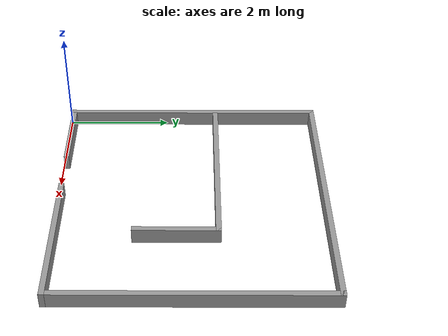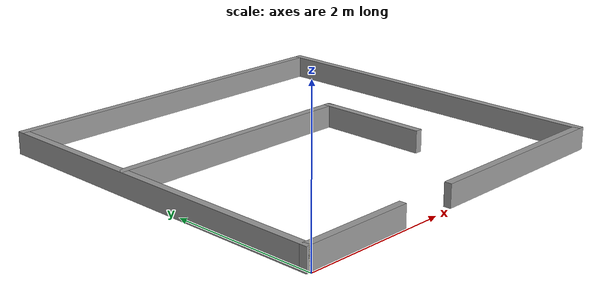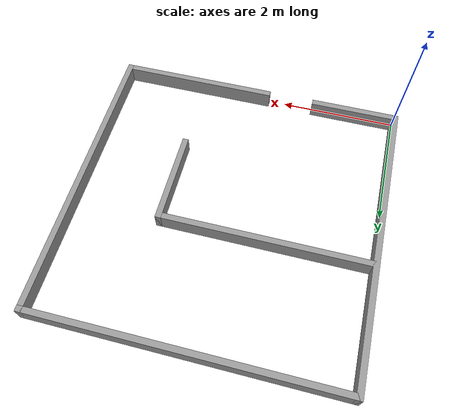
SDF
<?xml version='1.0'?>
<sdf version='1.6'>
  <model name='base_structure_5x5'>
    <pose frame=''>2.5 2.535 0 0 -0 0</pose>
    <link name='Wall_0'>
      <collision name='Wall_0_Collision'>
        <geometry>
          <box>
            <size>5.03 0.1 0.3</size>
          </box>
        </geometry>
        <pose frame=''>0 0 0.15 0 -0 0</pose>
      </collision>
      <visual name='Wall_0_Visual'>
        <pose frame=''>0 0 0.15 0 -0 0</pose>
        <geometry>
          <box>
            <size>5.03 0.1 0.3</size>
          </box>
        </geometry>
        <material>
          <script>
            <uri>file://media/materials/scripts/gazebo.material</uri>
            <name>Gazebo/Grey</name>
          </script>
          <ambient>1 1 1 1</ambient>
        </material>
        <meta>
          <layer>0</layer>
        </meta>
      </visual>
      <pose frame=''>-2.5 0 0 0 -0 1.5708</pose>
    </link>
    <link name='Wall_2'>
      <collision name='Wall_2_Collision'>
        <geometry>
          <box>
            <size>5.1 0.1 0.3</size>
          </box>
        </geometry>
        <pose frame=''>0 0 0.15 0 -0 0</pose>
      </collision>
      <visual name='Wall_2_Visual'>
        <pose frame=''>0 0 0.15 0 -0 0</pose>
        <geometry>
          <box>
            <size>5.1 0.1 0.3</size>
          </box>
        </geometry>
        <material>
          <script>
            <uri>file://media/materials/scripts/gazebo.material</uri>
            <name>Gazebo/Grey</name>
          </script>
          <ambient>1 1 1 1</ambient>
        </material>
        <meta>
          <layer>0</layer>
        </meta>
      </visual>
      <pose frame=''>0 2.465 0 0 -0 0</pose>
    </link>
    <link name='Wall_3'>
      <collision name='Wall_3_Collision'>
        <geometry>
          <box>
            <size>5.03 0.1 0.3</size>
          </box>
        </geometry>
        <pose frame=''>0 0 0.15 0 -0 0</pose>
      </collision>
      <visual name='Wall_3_Visual'>
        <pose frame=''>0 0 0.15 0 -0 0</pose>
        <geometry>
          <box>
            <size>5.03 0.1 0.3</size>
          </box>
        </geometry>
        <material>
          <script>
            <uri>file://media/materials/scripts/gazebo.material</uri>
            <name>Gazebo/Grey</name>
          </script>
          <ambient>1 1 1 1</ambient>
        </material>
        <meta>
          <layer>0</layer>
        </meta>
      </visual>
      <pose frame=''>2.5 0 0 0 -0 -1.5708</pose>
    </link>
    <link name='Wall_4'>
      <collision name='Wall_4_Collision'>
        <geometry>
          <box>
            <size>2.76 0.1 0.3</size>
          </box>
        </geometry>
        <pose frame=''>0 0 0.15 0 -0 0</pose>
      </collision>
      <visual name='Wall_4_Visual'>
        <pose frame=''>0 0 0.15 0 -0 0</pose>
        <geometry>
          <box>
            <size>2.76 0.1 0.3</size>
          </box>
        </geometry>
        <material>
          <script>
            <uri>file://media/materials/scripts/gazebo.material</uri>
            <name>Gazebo/Grey</name>
          </script>
          <ambient>1 1 1 1</ambient>
        </material>
        <meta>
          <layer>0</layer>
        </meta>
      </visual>
      <pose frame=''>1.17 -2.465 0 0 -0 3.14159</pose>
    </link>
    <link name='Wall_6'>
      <collision name='Wall_6_Collision'>
        <geometry>
          <box>
            <size>1.55 0.1 0.3</size>
          </box>
        </geometry>
        <pose frame=''>0 0 0.15 0 -0 0</pose>
      </collision>
      <visual name='Wall_6_Visual'>
        <pose frame=''>0 0 0.15 0 -0 0</pose>
        <geometry>
          <box>
            <size>1.55 0.1 0.3</size>
          </box>
        </geometry>
        <material>
          <script>
            <uri>file://media/materials/scripts/gazebo.material</uri>
            <name>Gazebo/Grey</name>
          </script>
          <ambient>1 1 1 1</ambient>
        </material>
        <meta>
          <layer>0</layer>
        </meta>
      </visual>
      <pose frame=''>-1.775 -2.465 0 0 -0 0</pose>
    </link>
    <link name='Wall_8'>
      <collision name='Wall_8_Collision'>
        <geometry>
          <box>
            <size>3.6 0.1 0.3</size>
          </box>
        </geometry>
        <pose frame=''>0 0 0.15 0 -0 0</pose>
      </collision>
      <visual name='Wall_8_Visual'>
        <pose frame=''>0 0 0.15 0 -0 0</pose>
        <geometry>
          <box>
            <size>3.6 0.1 0.3</size>
          </box>
        </geometry>
        <material>
          <script>
            <uri>file://media/materials/scripts/gazebo.material</uri>
            <name>Gazebo/Grey</name>
          </script>
          <ambient>1 1 1 1</ambient>
        </material>
        <meta>
          <layer>0</layer>
        </meta>
      </visual>
      <pose frame=''>-0.75 0.465 0 0 -0 0</pose>
    </link>
    <link name='Wall_9'>
      <collision name='Wall_9_Collision'>
        <geometry>
          <box>
            <size>1.6 0.1 0.3</size>
          </box>
        </geometry>
        <pose frame=''>0 0 0.15 0 -0 0</pose>
      </collision>
      <visual name='Wall_9_Visual'>
        <pose frame=''>0 0 0.15 0 -0 0</pose>
        <geometry>
          <box>
            <size>1.6 0.1 0.3</size>
          </box>
        </geometry>
        <material>
          <script>
            <uri>file://media/materials/scripts/gazebo.material</uri>
            <name>Gazebo/Grey</name>
          </script>
          <ambient>1 1 1 1</ambient>
        </material>
        <meta>
          <layer>0</layer>
        </meta>
      </visual>
      <pose frame=''>1 -0.285 0 0 -0 -1.5708</pose>
    </link>
    <static>1</static>
  </model>
</sdf>
